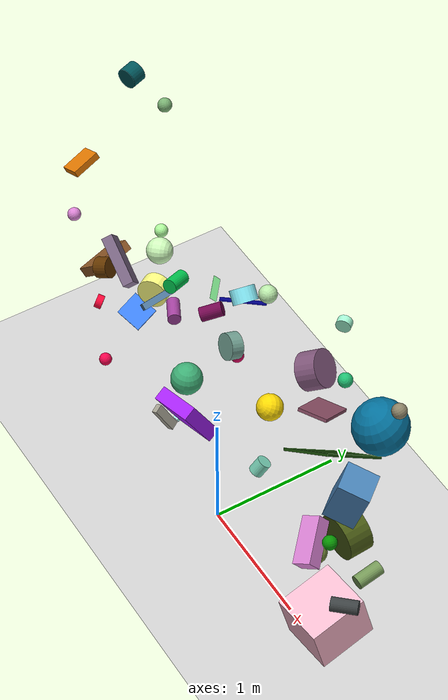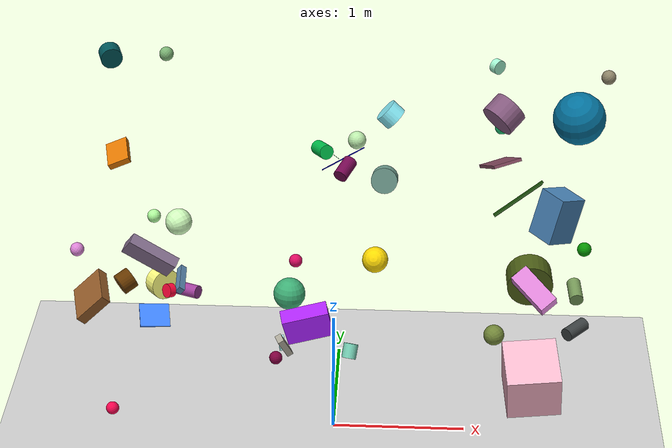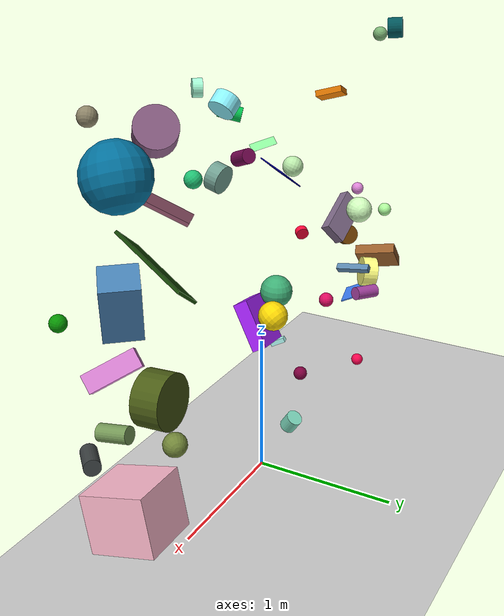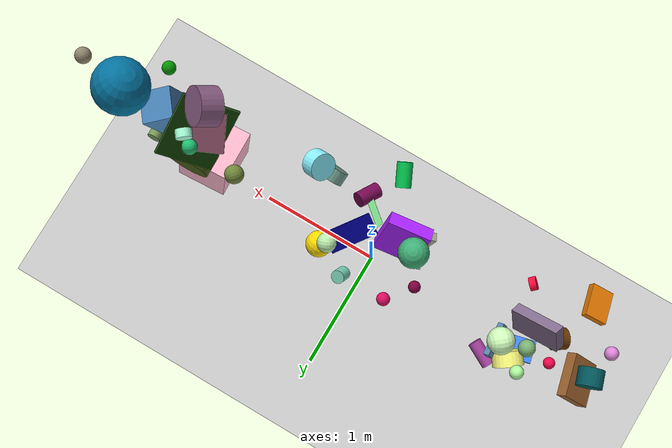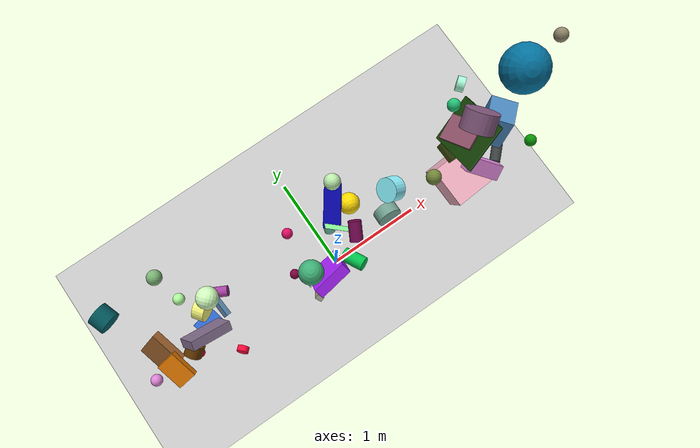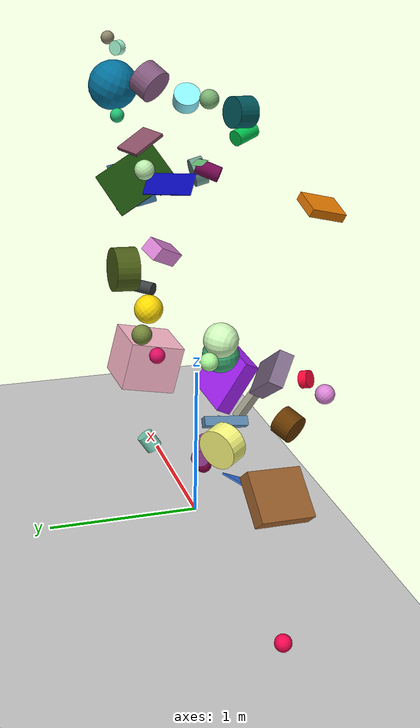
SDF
<sdf version="1.6">
 <world name="default">
  <light name="group/sun" type="directional">
   <direction>-0.5 0.1 -0.9</direction>
   <attenuation>
    <range>1000.0</range>
    <quadratic>0.001</quadratic>
    <constant>0.9</constant>
    <linear>0.01</linear>
   </attenuation>
   <pose>0 0 10 0 0 0</pose>
   <specular>0.2 0.2 0.2 1</specular>
   <diffuse>0.8 0.8 0.8 1</diffuse>
  </light>
  <model name="full_crate_2/cylinder_3">
   <allow_auto_disable>0</allow_auto_disable>
   <link name="link">
    <collision name="collision">
     <geometry><cylinder><length>0.196649048091</length><radius>0.05</radius></cylinder></geometry>
     <max_contacts>20</max_contacts>
    </collision>
    <visual name="visual">
     <geometry><cylinder><length>0.196649048091</length><radius>0.05</radius></cylinder></geometry>
     <material>
      <diffuse>0.643137 0.258824 0.627451 1</diffuse>
      <ambient>0.643137 0.258824 0.627451 1</ambient>
     </material>
     <transparency>0.0</transparency>
    </visual>
    <inertial>
     <mass>0.169870316542</mass>
     <inertia>
      <ixz>0.0</ixz>
      <ixx>0.000653588048697</ixx>
      <ixy>0.0</ixy>
      <izz>0.000212337895678</izz>
      <iyy>0.000653588048697</iyy>
      <iyz>0.0</iyz>
     </inertia>
    </inertial>
   </link>
   <pose>-1.12274 0.303846 1.01482 0.652644 -1.45258 2.00378</pose>
   <static>0</static>
  </model>
  <model name="full_crate_2/cylinder_2">
   <allow_auto_disable>0</allow_auto_disable>
   <link name="link">
    <collision name="collision">
     <geometry><cylinder><length>0.108043972093</length><radius>0.0795208652005</radius></cylinder></geometry>
     <max_contacts>20</max_contacts>
    </collision>
    <visual name="visual">
     <geometry><cylinder><length>0.108043972093</length><radius>0.0795208652005</radius></cylinder></geometry>
     <material><diffuse>0.396078 0.215686 0 1</diffuse><ambient>0.396078 0.215686 0 1</ambient></material>
     <transparency>0.0</transparency>
    </visual>
    <inertial>
     <mass>0.137246569396</mass>
     <inertia>
      <ixz>0.0</ixz>
      <ixx>0.000350484321569</ixx>
      <ixy>0.0</ixy>
      <izz>0.000433944007323</izz>
      <iyy>0.000350484321569</iyy>
      <iyz>0.0</iyz>
     </inertia>
    </inertial>
   </link>
   <pose>-1.52385 -0.0403608 1.30777 -2.14917 -0.849909 2.62309</pose>
   <static>0</static>
  </model>
  <model name="full_crate_2/ball_4">
   <allow_auto_disable>0</allow_auto_disable>
   <link name="link">
    <collision name="collision">
     <geometry><sphere><radius>0.05</radius></sphere></geometry>
     <max_contacts>20</max_contacts>
    </collision>
    <visual name="visual">
     <geometry><sphere><radius>0.05</radius></sphere></geometry>
     <material>
      <diffuse>0.960784 0.0196078 0.309804 1</diffuse>
      <ambient>0.960784 0.0196078 0.309804 1</ambient>
     </material>
     <transparency>0.0</transparency>
    </visual>
    <inertial>
     <mass>0.413316675792</mass>
     <inertia>
      <ixz>0.0</ixz>
      <ixx>0.000413316675792</ixx>
      <ixy>0.0</ixy>
      <izz>0.000413316675792</izz>
      <iyy>0.000413316675792</iyy>
      <iyz>0.0</iyz>
     </inertia>
    </inertial>
   </link>
   <pose>-1.7093 0.0148838 0.0890633 1.22544 0.307683 1.77623</pose>
   <static>0</static>
  </model>
  <model name="full_crate_2/cylinder">
   <allow_auto_disable>0</allow_auto_disable>
   <link name="link">
    <collision name="collision">
     <geometry><cylinder><length>0.05</length><radius>0.05</radius></cylinder></geometry>
     <max_contacts>20</max_contacts>
    </collision>
    <visual name="visual">
     <geometry><cylinder><length>0.05</length><radius>0.05</radius></cylinder></geometry>
     <material><diffuse>1 0.027451 0.227451 1</diffuse><ambient>1 0.027451 0.227451 1</ambient></material>
     <transparency>0.0</transparency>
    </visual>
    <inertial>
     <mass>0.029449580598</mass>
     <inertia>
      <ixz>0.0</ixz>
      <ixx>2.4541317165e-05</ixx>
      <ixy>0.0</ixy>
      <izz>3.68119757475e-05</izz>
      <iyy>2.4541317165e-05</iyy>
      <iyz>0.0</iyz>
     </inertia>
    </inertial>
   </link>
   <pose>-1.1692 -0.28011 1.3969 1.88267 0.400469 2.43899</pose>
   <static>0</static>
  </model>
  <model name="full_crate_2/cuboid_3">
   <allow_auto_disable>0</allow_auto_disable>
   <link name="link">
    <collision name="collision">
     <geometry><box><size>0.225148 0.19672 0.00948126</size></box></geometry>
     <max_contacts>20</max_contacts>
    </collision>
    <visual name="visual">
     <geometry><box><size>0.225148 0.19672 0.00948126</size></box></geometry>
     <material>
      <diffuse>0.243137 0.509804 0.988235 1</diffuse>
      <ambient>0.243137 0.509804 0.988235 1</ambient>
     </material>
     <transparency>0.0</transparency>
    </visual>
    <inertial>
     <mass>0.951683361882</mass>
     <inertia>
      <ixz>0.0</ixz>
      <ixx>0.00307620488224</ixx>
      <ixy>0.0</ixy>
      <izz>0.00708928630384</izz>
      <iyy>0.00402733989292</iyy>
      <iyz>0.0</iyz>
     </inertia>
    </inertial>
   </link>
   <pose>-1.35442 0.119494 0.897804 -2.69711 0.113877 0.227165</pose>
   <static>0</static>
  </model>
  <model name="full_crate_2/ball_1">
   <allow_auto_disable>0</allow_auto_disable>
   <link name="link">
    <collision name="collision">
     <geometry><sphere><radius>0.0977372200382</radius></sphere></geometry>
     <max_contacts>20</max_contacts>
    </collision>
    <visual name="visual">
     <geometry><sphere><radius>0.0977372200382</radius></sphere></geometry>
     <material><diffuse>0.819608 1 0.741176 1</diffuse><ambient>0.819608 1 0.741176 1</ambient></material>
     <transparency>0.0</transparency>
    </visual>
    <inertial>
     <mass>0.488396762799</mass>
     <inertia>
      <ixz>0.0</ixz>
      <ixx>0.00186617656893</ixx>
      <ixy>0.0</ixy>
      <izz>0.00186617656893</izz>
      <iyy>0.00186617656893</iyy>
      <iyz>0.0</iyz>
     </inertia>
    </inertial>
   </link>
   <pose>-1.14918 0.216422 1.67197 -1.70185 -0.679967 2.3846</pose>
   <static>0</static>
  </model>
  <model name="full_crate_2/ball">
   <allow_auto_disable>0</allow_auto_disable>
   <link name="link">
    <collision name="collision">
     <geometry><sphere><radius>0.05</radius></sphere></geometry>
     <max_contacts>20</max_contacts>
    </collision>
    <visual name="visual">
     <geometry><sphere><radius>0.05</radius></sphere></geometry>
     <material><diffuse>0.690196 1 0.615686 1</diffuse><ambient>0.690196 1 0.615686 1</ambient></material>
     <transparency>0.0</transparency>
    </visual>
    <inertial>
     <mass>0.317967161004</mass>
     <inertia>
      <ixz>0.0</ixz>
      <ixx>0.000317967161004</ixx>
      <ixy>0.0</ixy>
      <izz>0.000317967161004</izz>
      <iyy>0.000317967161004</iyy>
      <iyz>0.0</iyz>
     </inertia>
    </inertial>
   </link>
   <pose>-1.34962 0.345733 1.63672 1.12604 -1.11143 -0.487019</pose>
   <static>0</static>
  </model>
  <model name="full_crate_2/cylinder_4">
   <allow_auto_disable>0</allow_auto_disable>
   <link name="link">
    <collision name="collision">
     <geometry><cylinder><length>0.106356184727</length><radius>0.0758499985507</radius></cylinder></geometry>
     <max_contacts>20</max_contacts>
    </collision>
    <visual name="visual">
     <geometry><cylinder><length>0.106356184727</length><radius>0.0758499985507</radius></cylinder></geometry>
     <material><diffuse>0 0.333333 0.352941 1</diffuse><ambient>0 0.333333 0.352941 1</ambient></material>
     <transparency>0.0</transparency>
    </visual>
    <inertial>
     <mass>0.683600382849</mass>
     <inertia>
      <ixz>0.0</ixz>
      <ixx>0.00162761291231</ixx>
      <ixy>0.0</ixy>
      <izz>0.00196645247666</izz>
      <iyy>0.00162761291231</iyy>
      <iyz>0.0</iyz>
     </inertia>
    </inertial>
   </link>
   <pose>-1.57452 0.27641 2.9879 1.33308 -1.28312 -2.59904</pose>
   <static>0</static>
  </model>
  <model name="full_crate_2/cylinder_1">
   <allow_auto_disable>0</allow_auto_disable>
   <link name="link">
    <collision name="collision">
     <geometry><cylinder><length>0.111021966419</length><radius>0.11512258124</radius></cylinder></geometry>
     <max_contacts>20</max_contacts>
    </collision>
    <visual name="visual">
     <geometry><cylinder><length>0.111021966419</length><radius>0.11512258124</radius></cylinder></geometry>
     <material><diffuse>1 1 0.505882 1</diffuse><ambient>1 1 0.505882 1</ambient></material>
     <transparency>0.0</transparency>
    </visual>
    <inertial>
     <mass>0.162002770428</mass>
     <inertia>
      <ixz>0.0</ixz>
      <ixx>0.000703166317609</ixx>
      <ixy>0.0</ixy>
      <izz>0.00107352826415</izz>
      <iyy>0.000703166317609</iyy>
      <iyz>0.0</iyz>
     </inertia>
    </inertial>
   </link>
   <pose>-1.2981 0.24689 1.11484 -1.72841 0.634266 0.533946</pose>
   <static>0</static>
  </model>
  <model name="full_crate_2/cuboid_4">
   <allow_auto_disable>0</allow_auto_disable>
   <link name="link">
    <collision name="collision">
     <geometry><box><size>0.153202 0.209479 0.0469658</size></box></geometry>
     <max_contacts>20</max_contacts>
    </collision>
    <visual name="visual">
     <geometry><box><size>0.153202 0.209479 0.0469658</size></box></geometry>
     <material>
      <diffuse>0.882353 0.466667 0.00392157 1</diffuse>
      <ambient>0.882353 0.466667 0.00392157 1</ambient>
     </material>
     <transparency>0.0</transparency>
    </visual>
    <inertial>
     <mass>0.425962955755</mass>
     <inertia>
      <ixz>0.0</ixz>
      <ixx>0.00163595632336</ixx>
      <ixy>0.0</ixy>
      <izz>0.00239080460006</izz>
      <iyy>0.000911445331256</iyy>
      <iyz>0.0</iyz>
     </inertia>
    </inertial>
   </link>
   <pose>-1.48225 -0.195278 2.47039 2.85934 0.383003 -3.04369</pose>
   <static>0</static>
  </model>
  <model name="full_crate_2/cuboid_1">
   <allow_auto_disable>0</allow_auto_disable>
   <link name="link">
    <collision name="collision">
     <geometry><box><size>0.25874 0.0501014 0.0540694</size></box></geometry>
     <max_contacts>20</max_contacts>
    </collision>
    <visual name="visual">
     <geometry><box><size>0.25874 0.0501014 0.0540694</size></box></geometry>
     <material>
      <diffuse>0.352941 0.52549 0.678431 1</diffuse>
      <ambient>0.352941 0.52549 0.678431 1</ambient>
     </material>
     <transparency>0.0</transparency>
    </visual>
    <inertial>
     <mass>0.81975783264</mass>
     <inertia>
      <ixz>0.0</ixz>
      <ixx>0.000371189760247</ixx>
      <ixy>0.0</ixy>
      <izz>0.00474478955151</izz>
      <iyy>0.00477302702172</iyy>
      <iyz>0.0</iyz>
     </inertia>
    </inertial>
   </link>
   <pose>-1.15048 0.185252 1.18441 2.46609 0.124868 -1.51778</pose>
   <static>0</static>
  </model>
  <model name="full_crate_2/cuboid">
   <allow_auto_disable>0</allow_auto_disable>
   <link name="link">
    <collision name="collision">
     <geometry><box><size>0.185818 0.379889 0.08305</size></box></geometry>
     <max_contacts>20</max_contacts>
    </collision>
    <visual name="visual">
     <geometry><box><size>0.185818 0.379889 0.08305</size></box></geometry>
     <material>
      <diffuse>0.509804 0.427451 0.54902 1</diffuse>
      <ambient>0.509804 0.427451 0.54902 1</ambient>
     </material>
     <transparency>0.0</transparency>
    </visual>
    <inertial>
     <mass>0.8213693251</mass>
     <inertia>
      <ixz>0.0</ixz>
      <ixx>0.0103501445636</ixx>
      <ixy>0.0</ixy>
      <izz>0.0122414089975</izz>
      <iyy>0.00283546977041</iyy>
      <iyz>0.0</iyz>
     </inertia>
    </inertial>
   </link>
   <pose>-1.33534 -0.0092274 1.51944 -2.22682 0.848824 2.30576</pose>
   <static>0</static>
  </model>
  <model name="full_crate_2/cuboid_2">
   <allow_auto_disable>0</allow_auto_disable>
   <link name="link">
    <collision name="collision">
     <geometry><box><size>0.0807524 0.326365 0.275759</size></box></geometry>
     <max_contacts>20</max_contacts>
    </collision>
    <visual name="visual">
     <geometry><box><size>0.0807524 0.326365 0.275759</size></box></geometry>
     <material>
      <diffuse>0.596078 0.368627 0.168627 1</diffuse>
      <ambient>0.596078 0.368627 0.168627 1</ambient>
     </material>
     <transparency>0.0</transparency>
    </visual>
    <inertial>
     <mass>0.765968148879</mass>
     <inertia>
      <ixz>0.0</ixz>
      <ixx>0.0116527437738</ixx>
      <ixy>0.0</ixy>
      <izz>0.00721508490573</izz>
      <iyy>0.00527013135253</iyy>
      <iyz>0.0</iyz>
     </inertia>
    </inertial>
   </link>
   <pose>-1.81995 0.120058 1.05469 2.94215 -0.785565 -2.76955</pose>
   <static>0</static>
  </model>
  <model name="full_crate_2/ball_2">
   <allow_auto_disable>0</allow_auto_disable>
   <link name="link">
    <collision name="collision">
     <geometry><sphere><radius>0.05</radius></sphere></geometry>
     <max_contacts>20</max_contacts>
    </collision>
    <visual name="visual">
     <geometry><sphere><radius>0.05</radius></sphere></geometry>
     <material>
      <diffuse>0.866667 0.521569 0.843137 1</diffuse>
      <ambient>0.866667 0.521569 0.843137 1</ambient>
     </material>
     <transparency>0.0</transparency>
    </visual>
    <inertial>
     <mass>0.176420838134</mass>
     <inertia>
      <ixz>0.0</ixz>
      <ixx>0.000176420838134</ixx>
      <ixy>0.0</ixy>
      <izz>0.000176420838134</izz>
      <iyy>0.000176420838134</iyy>
      <iyz>0.0</iyz>
     </inertia>
    </inertial>
   </link>
   <pose>-1.85013 -0.0992003 1.61135 0.449995 -0.738198 -2.97482</pose>
   <static>0</static>
  </model>
  <model name="full_crate_2/ball_3">
   <allow_auto_disable>0</allow_auto_disable>
   <link name="link">
    <collision name="collision">
     <geometry><sphere><radius>0.05</radius></sphere></geometry>
     <max_contacts>20</max_contacts>
    </collision>
    <visual name="visual">
     <geometry><sphere><radius>0.05</radius></sphere></geometry>
     <material>
      <diffuse>0.482353 0.698039 0.454902 1</diffuse>
      <ambient>0.482353 0.698039 0.454902 1</ambient>
     </material>
     <transparency>0.0</transparency>
    </visual>
    <inertial>
     <mass>0.201928672202</mass>
     <inertia>
      <ixz>0.0</ixz>
      <ixx>0.000201928672202</ixx>
      <ixy>0.0</ixy>
      <izz>0.000201928672202</izz>
      <iyy>0.000201928672202</iyy>
      <iyz>0.0</iyz>
     </inertia>
    </inertial>
   </link>
   <pose>-1.18708 0.312062 2.99023 -2.24819 -0.311098 2.4477</pose>
   <static>0</static>
  </model>
  <model name="full_crate_1/ball_3">
   <allow_auto_disable>0</allow_auto_disable>
   <link name="link">
    <collision name="collision">
     <geometry><sphere><radius>0.05</radius></sphere></geometry>
     <max_contacts>20</max_contacts>
    </collision>
    <visual name="visual">
     <geometry><sphere><radius>0.05</radius></sphere></geometry>
     <material>
      <diffuse>0.870588 0.0470588 0.384314 1</diffuse>
      <ambient>0.870588 0.0470588 0.384314 1</ambient>
     </material>
     <transparency>0.0</transparency>
    </visual>
    <inertial>
     <mass>0.1</mass>
     <inertia>
      <ixz>0.0</ixz>
      <ixx>0.0001</ixx>
      <ixy>0.0</ixy>
      <izz>0.0001</izz>
      <iyy>0.0001</iyy>
      <iyz>0.0</iyz>
     </inertia>
    </inertial>
   </link>
   <pose>-0.301774 0.348385 1.27328 -2.61679 -1.2975 1.93625</pose>
   <static>0</static>
  </model>
  <model name="full_crate_1/ball_2">
   <allow_auto_disable>0</allow_auto_disable>
   <link name="link">
    <collision name="collision">
     <geometry><sphere><radius>0.0969636948203</radius></sphere></geometry>
     <max_contacts>20</max_contacts>
    </collision>
    <visual name="visual">
     <geometry><sphere><radius>0.0969636948203</radius></sphere></geometry>
     <material><diffuse>1 0.854902 0.0117647 1</diffuse><ambient>1 0.854902 0.0117647 1</ambient></material>
     <transparency>0.0</transparency>
    </visual>
    <inertial>
     <mass>0.95639210794</mass>
     <inertia>
      <ixz>0.0</ixz>
      <ixx>0.00359678341546</ixx>
      <ixy>0.0</ixy>
      <izz>0.00359678341546</izz>
      <iyy>0.00359678341546</iyy>
      <iyz>0.0</iyz>
     </inertia>
    </inertial>
   </link>
   <pose>0.294955 0.247479 1.36645 2.24264 -0.0686642 2.93167</pose>
   <static>0</static>
  </model>
  <model name="full_crate_1/ball_1">
   <allow_auto_disable>0</allow_auto_disable>
   <link name="link">
    <collision name="collision">
     <geometry><sphere><radius>0.05</radius></sphere></geometry>
     <max_contacts>20</max_contacts>
    </collision>
    <visual name="visual">
     <geometry><sphere><radius>0.05</radius></sphere></geometry>
     <material>
      <diffuse>0.501961 0.00392157 0.247059 1</diffuse>
      <ambient>0.501961 0.00392157 0.247059 1</ambient>
     </material>
     <transparency>0.0</transparency>
    </visual>
    <inertial>
     <mass>0.155652817507</mass>
     <inertia>
      <ixz>0.0</ixz>
      <ixx>0.000155652817507</ixx>
      <ixy>0.0</ixy>
      <izz>0.000155652817507</izz>
      <iyy>0.000155652817507</iyy>
      <iyz>0.0</iyz>
     </inertia>
    </inertial>
   </link>
   <pose>-0.443305 0.0849494 0.561834 -0.344392 0.627236 1.4277</pose>
   <static>0</static>
  </model>
  <model name="full_crate_1/cylinder_1">
   <allow_auto_disable>0</allow_auto_disable>
   <link name="link">
    <collision name="collision">
     <geometry><cylinder><length>0.157229292468</length><radius>0.05</radius></cylinder></geometry>
     <max_contacts>20</max_contacts>
    </collision>
    <visual name="visual">
     <geometry><cylinder><length>0.157229292468</length><radius>0.05</radius></cylinder></geometry>
     <material>
      <diffuse>0.00784314 0.756863 0.301961 1</diffuse>
      <ambient>0.00784314 0.756863 0.301961 1</ambient>
     </material>
     <transparency>0.0</transparency>
    </visual>
    <inertial>
     <mass>0.555344194306</mass>
     <inertia>
      <ixz>0.0</ixz>
      <ixx>0.0014911477733</ixx>
      <ixy>0.0</ixy>
      <izz>0.000694180242882</izz>
      <iyy>0.0014911477733</iyy>
      <iyz>0.0</iyz>
     </inertia>
    </inertial>
   </link>
   <pose>-0.0659793 -0.26894 2.57932 1.81779 -0.122863 -2.71884</pose>
   <static>0</static>
  </model>
  <model name="full_crate_1/ball">
   <allow_auto_disable>0</allow_auto_disable>
   <link name="link">
    <collision name="collision">
     <geometry><sphere><radius>0.064393180499</radius></sphere></geometry>
     <max_contacts>20</max_contacts>
    </collision>
    <visual name="visual">
     <geometry><sphere><radius>0.064393180499</radius></sphere></geometry>
     <material>
      <diffuse>0.737255 0.92549 0.67451 1</diffuse>
      <ambient>0.737255 0.92549 0.67451 1</ambient>
     </material>
     <transparency>0.0</transparency>
    </visual>
    <inertial>
     <mass>0.852381836683</mass>
     <inertia>
      <ixz>0.0</ixz>
      <ixx>0.00141375427311</ixx>
      <ixy>0.0</ixy>
      <izz>0.00141375427311</izz>
      <iyy>0.00141375427311</iyy>
      <iyz>0.0</iyz>
     </inertia>
    </inertial>
   </link>
   <pose>0.151247 0.307328 2.34101 -1.14496 0.066342 -2.64353</pose>
   <static>0</static>
  </model>
  <model name="full_crate_1/cylinder_2">
   <allow_auto_disable>0</allow_auto_disable>
   <link name="link">
    <collision name="collision">
     <geometry><cylinder><length>0.113171933187</length><radius>0.056192017223</radius></cylinder></geometry>
     <max_contacts>20</max_contacts>
    </collision>
    <visual name="visual">
     <geometry><cylinder><length>0.113171933187</length><radius>0.056192017223</radius></cylinder></geometry>
     <material>
      <diffuse>0.470588 0.819608 0.713725 1</diffuse>
      <ambient>0.470588 0.819608 0.713725 1</ambient>
     </material>
     <transparency>0.0</transparency>
    </visual>
    <inertial>
     <mass>0.508788824979</mass>
     <inertia>
      <ixz>0.0</ixz>
      <ixx>0.000944673081299</ixx>
      <ixy>0.0</ixy>
      <izz>0.000803261245414</izz>
      <iyy>0.000944673081299</iyy>
      <iyz>0.0</iyz>
     </inertia>
    </inertial>
   </link>
   <pose>0.110742 0.293218 0.495196 0.572717 -0.247425 -3.05164</pose>
   <static>0</static>
  </model>
  <model name="full_crate_1/cylinder_4">
   <allow_auto_disable>0</allow_auto_disable>
   <link name="link">
    <collision name="collision">
     <geometry><cylinder><length>0.0997688268396</length><radius>0.0857429083225</radius></cylinder></geometry>
     <max_contacts>20</max_contacts>
    </collision>
    <visual name="visual">
     <geometry><cylinder><length>0.0997688268396</length><radius>0.0857429083225</radius></cylinder></geometry>
     <material>
      <diffuse>0.541176 0.945098 0.996078 1</diffuse>
      <ambient>0.541176 0.945098 0.996078 1</ambient>
     </material>
     <transparency>0.0</transparency>
    </visual>
    <inertial>
     <mass>0.862312480984</mass>
     <inertia>
      <ixz>0.0</ixz>
      <ixx>0.00230017239434</ixx>
      <ixy>0.0</ixy>
      <izz>0.00316979442328</izz>
      <iyy>0.00230017239434</iyy>
      <iyz>0.0</iyz>
     </inertia>
    </inertial>
   </link>
   <pose>0.39227 -0.0334159 2.73734 0.124016 -0.840868 -0.334148</pose>
   <static>0</static>
  </model>
  <model name="full_crate_1/ball_4">
   <allow_auto_disable>0</allow_auto_disable>
   <link name="link">
    <collision name="collision">
     <geometry><sphere><radius>0.116875627764</radius></sphere></geometry>
     <max_contacts>20</max_contacts>
    </collision>
    <visual name="visual">
     <geometry><sphere><radius>0.116875627764</radius></sphere></geometry>
     <material>
      <diffuse>0.243137 0.686275 0.462745 1</diffuse>
      <ambient>0.243137 0.686275 0.462745 1</ambient>
     </material>
     <transparency>0.0</transparency>
    </visual>
    <inertial>
     <mass>0.166490108131</mass>
     <inertia>
      <ixz>0.0</ixz>
      <ixx>0.000909696114705</ixx>
      <ixy>0.0</ixy>
      <izz>0.000909696114705</izz>
      <iyy>0.000909696114705</iyy>
      <iyz>0.0</iyz>
     </inertia>
    </inertial>
   </link>
   <pose>-0.321418 -0.0567465 1.24853 -3.05742 0.0503136 2.1269</pose>
   <static>0</static>
  </model>
  <model name="full_crate_1/cylinder">
   <allow_auto_disable>0</allow_auto_disable>
   <link name="link">
    <collision name="collision">
     <geometry><cylinder><length>0.15370582379</length><radius>0.05</radius></cylinder></geometry>
     <max_contacts>20</max_contacts>
    </collision>
    <visual name="visual">
     <geometry><cylinder><length>0.15370582379</length><radius>0.05</radius></cylinder></geometry>
     <material>
      <diffuse>0.458824 0.0313725 0.317647 1</diffuse>
      <ambient>0.458824 0.0313725 0.317647 1</ambient>
     </material>
     <transparency>0.0</transparency>
    </visual>
    <inertial>
     <mass>0.378151443738</mass>
     <inertia>
      <ixz>0.0</ixz>
      <ixx>0.000980845441662</ixx>
      <ixy>0.0</ixy>
      <izz>0.000472689304672</izz>
      <iyy>0.000980845441662</iyy>
      <iyz>0.0</iyz>
     </inertia>
    </inertial>
   </link>
   <pose>0.0840076 -0.0883185 2.33007 -0.774845 -1.0785 -1.21891</pose>
   <static>0</static>
  </model>
  <model name="full_crate_1/cuboid">
   <allow_auto_disable>0</allow_auto_disable>
   <link name="link">
    <collision name="collision">
     <geometry><box><size>0.0592614 0.000418816 0.175104</size></box></geometry>
     <max_contacts>20</max_contacts>
    </collision>
    <visual name="visual">
     <geometry><box><size>0.0592614 0.000418816 0.175104</size></box></geometry>
     <material><diffuse>0.560784 1 0.623529 1</diffuse><ambient>0.560784 1 0.623529 1</ambient></material>
     <transparency>0.0</transparency>
    </visual>
    <inertial>
     <mass>0.892414833055</mass>
     <inertia>
      <ixz>0.0</ixz>
      <ixx>0.00228023527285</ixx>
      <ixy>0.0</ixy>
      <izz>0.000261186675679</izz>
      <iyy>0.00254139585929</iyy>
      <iyz>0.0</iyz>
     </inertia>
    </inertial>
   </link>
   <pose>-0.021978 0.00129764 2.40572 -1.24542 0.7645 1.09169</pose>
   <static>0</static>
  </model>
  <model name="full_crate_1/cuboid_4">
   <allow_auto_disable>0</allow_auto_disable>
   <link name="link">
    <collision name="collision">
     <geometry><box><size>0.216927 0.0677966 0.047307</size></box></geometry>
     <max_contacts>20</max_contacts>
    </collision>
    <visual name="visual">
     <geometry><box><size>0.216927 0.0677966 0.047307</size></box></geometry>
     <material>
      <diffuse>0.658824 0.643137 0.584314 1</diffuse>
      <ambient>0.658824 0.643137 0.584314 1</ambient>
     </material>
     <transparency>0.0</transparency>
    </visual>
    <inertial>
     <mass>0.813712580138</mass>
     <inertia>
      <ixz>0.0</ixz>
      <ixx>0.000463431824681</ixx>
      <ixy>0.0</ixy>
      <izz>0.00350259132752</izz>
      <iyy>0.00334266816317</iyy>
      <iyz>0.0</iyz>
     </inertia>
    </inertial>
   </link>
   <pose>-0.353654 -0.225641 0.902886 -2.54743 1.02194 0.999975</pose>
   <static>0</static>
  </model>
  <model name="full_crate_1/cylinder_3">
   <allow_auto_disable>0</allow_auto_disable>
   <link name="link">
    <collision name="collision">
     <geometry><cylinder><length>0.0861189502774</length><radius>0.0925571677113</radius></cylinder></geometry>
     <max_contacts>20</max_contacts>
    </collision>
    <visual name="visual">
     <geometry><cylinder><length>0.0861189502774</length><radius>0.0925571677113</radius></cylinder></geometry>
     <material>
      <diffuse>0.443137 0.623529 0.568627 1</diffuse>
      <ambient>0.443137 0.623529 0.568627 1</ambient>
     </material>
     <transparency>0.0</transparency>
    </visual>
    <inertial>
     <mass>0.700421718462</mass>
     <inertia>
      <ixz>0.0</ixz>
      <ixx>0.00193298658923</ixx>
      <ixy>0.0</ixy>
      <izz>0.00300019664819</izz>
      <iyy>0.00193298658923</iyy>
      <iyz>0.0</iyz>
     </inertia>
    </inertial>
   </link>
   <pose>0.359891 -0.107213 2.26318 2.82805 -1.28767 1.82998</pose>
   <static>0</static>
  </model>
  <model name="full_crate_1/cuboid_1">
   <allow_auto_disable>0</allow_auto_disable>
   <link name="link">
    <collision name="collision">
     <geometry><box><size>0.316986 0.166957 0.00690518</size></box></geometry>
     <max_contacts>20</max_contacts>
    </collision>
    <visual name="visual">
     <geometry><box><size>0.316986 0.166957 0.00690518</size></box></geometry>
     <material>
      <diffuse>0.0196078 0.0156863 0.666667 1</diffuse>
      <ambient>0.0196078 0.0156863 0.666667 1</ambient>
     </material>
     <transparency>0.0</transparency>
    </visual>
    <inertial>
     <mass>0.708959335131</mass>
     <inertia>
      <ixz>0.0</ixz>
      <ixx>0.00164964623501</ixx>
      <ixy>0.0</ixy>
      <izz>0.00758319208276</izz>
      <iyy>0.00593917988597</iyy>
      <iyz>0.0</iyz>
     </inertia>
    </inertial>
   </link>
   <pose>0.0588573 0.171173 2.26219 -0.690341 0.062843 0.944464</pose>
   <static>0</static>
  </model>
  <model name="full_crate_1/cuboid_2">
   <allow_auto_disable>0</allow_auto_disable>
   <link name="link">
    <collision name="collision">
     <geometry><box><size>0.358045 0.106399 0.343253</size></box></geometry>
     <max_contacts>20</max_contacts>
    </collision>
    <visual name="visual">
     <geometry><box><size>0.358045 0.106399 0.343253</size></box></geometry>
     <material><diffuse>0.666667 0.137255 1 1</diffuse><ambient>0.666667 0.137255 1 1</ambient></material>
     <transparency>0.0</transparency>
    </visual>
    <inertial>
     <mass>0.214432686077</mass>
     <inertia>
      <ixz>0.0</ixz>
      <ixx>0.00230771739893</ixx>
      <ixy>0.0</ixy>
      <izz>0.00249308460433</izz>
      <iyy>0.00439620954212</iyy>
      <iyz>0.0</iyz>
     </inertia>
    </inertial>
   </link>
   <pose>-0.189623 -0.136679 1.04405 -1.17975 -1.04231 -1.76151</pose>
   <static>0</static>
  </model>
  <model name="full_crate_1/cuboid_3">
   <allow_auto_disable>0</allow_auto_disable>
   <link name="link">
    <collision name="collision">
     <geometry><box><size>0.112731 0.0398933 0.0350476</size></box></geometry>
     <max_contacts>20</max_contacts>
    </collision>
    <visual name="visual">
     <geometry><box><size>0.112731 0.0398933 0.0350476</size></box></geometry>
     <material><diffuse>0.717647 1 0.980392 1</diffuse><ambient>0.717647 1 0.980392 1</ambient></material>
     <transparency>0.0</transparency>
    </visual>
    <inertial>
     <mass>0.561659345412</mass>
     <inertia>
      <ixz>0.0</ixz>
      <ixx>0.000131980908919</ixx>
      <ixy>0.0</ixy>
      <izz>0.0006692974255</izz>
      <iyy>0.000652300602196</iyy>
      <iyz>0.0</iyz>
     </inertia>
    </inertial>
   </link>
   <pose>-0.383469 -0.0738916 0.817752 0.040193 -0.476911 1.77554</pose>
   <static>0</static>
  </model>
  <model name="full_crate/ball_3">
   <allow_auto_disable>0</allow_auto_disable>
   <link name="link">
    <collision name="collision">
     <geometry><sphere><radius>0.05</radius></sphere></geometry>
     <max_contacts>20</max_contacts>
    </collision>
    <visual name="visual">
     <geometry><sphere><radius>0.05</radius></sphere></geometry>
     <material>
      <diffuse>0.12549 0.752941 0.45098 1</diffuse>
      <ambient>0.12549 0.752941 0.45098 1</ambient>
     </material>
     <transparency>0.0</transparency>
    </visual>
    <inertial>
     <mass>0.1</mass>
     <inertia>
      <ixz>0.0</ixz>
      <ixx>0.0001</ixx>
      <ixy>0.0</ixy>
      <izz>0.0001</izz>
      <iyy>0.0001</iyy>
      <iyz>0.0</iyz>
     </inertia>
    </inertial>
   </link>
   <pose>1.17434 0.241892 2.5079 -2.54538 0.23432 0.28502</pose>
   <static>0</static>
  </model>
  <model name="full_crate/ball_2">
   <allow_auto_disable>0</allow_auto_disable>
   <link name="link">
    <collision name="collision">
     <geometry><sphere><radius>0.05</radius></sphere></geometry>
     <max_contacts>20</max_contacts>
    </collision>
    <visual name="visual">
     <geometry><sphere><radius>0.05</radius></sphere></geometry>
     <material>
      <diffuse>0.0313725 0.580392 0.0156863 1</diffuse>
      <ambient>0.0313725 0.580392 0.0156863 1</ambient>
     </material>
     <transparency>0.0</transparency>
    </visual>
    <inertial>
     <mass>0.511477286002</mass>
     <inertia>
      <ixz>0.0</ixz>
      <ixx>0.000511477286002</ixx>
      <ixy>0.0</ixy>
      <izz>0.000511477286002</izz>
      <iyy>0.000511477286002</iyy>
      <iyz>0.0</iyz>
     </inertia>
    </inertial>
   </link>
   <pose>1.77025 -0.236433 1.81119 1.46499 -1.34117 -0.121964</pose>
   <static>0</static>
  </model>
  <model name="full_crate/cylinder">
   <allow_auto_disable>0</allow_auto_disable>
   <link name="link">
    <collision name="collision">
     <geometry><cylinder><length>0.189946948405</length><radius>0.05</radius></cylinder></geometry>
     <max_contacts>20</max_contacts>
    </collision>
    <visual name="visual">
     <geometry><cylinder><length>0.189946948405</length><radius>0.05</radius></cylinder></geometry>
     <material><diffuse>0.462745 0.6 0.345098 1</diffuse><ambient>0.462745 0.6 0.345098 1</ambient></material>
     <transparency>0.0</transparency>
    </visual>
    <inertial>
     <mass>0.329354634244</mass>
     <inertia>
      <ixz>0.0</ixz>
      <ixx>0.00119610194335</ixx>
      <ixy>0.0</ixy>
      <izz>0.000411693292805</izz>
      <iyy>0.00119610194335</iyy>
      <iyz>0.0</iyz>
     </inertia>
    </inertial>
   </link>
   <pose>1.76767 0.088064 1.23833 3.10819 1.42154 1.60494</pose>
   <static>0</static>
  </model>
  <model name="full_crate/ball_4">
   <allow_auto_disable>0</allow_auto_disable>
   <link name="link">
    <collision name="collision">
     <geometry><sphere><radius>0.05</radius></sphere></geometry>
     <max_contacts>20</max_contacts>
    </collision>
    <visual name="visual">
     <geometry><sphere><radius>0.05</radius></sphere></geometry>
     <material>
      <diffuse>0.552941 0.517647 0.407843 1</diffuse>
      <ambient>0.552941 0.517647 0.407843 1</ambient>
     </material>
     <transparency>0.0</transparency>
    </visual>
    <inertial>
     <mass>0.479751108938</mass>
     <inertia>
      <ixz>0.0</ixz>
      <ixx>0.000479751108938</ixx>
      <ixy>0.0</ixy>
      <izz>0.000479751108938</izz>
      <iyy>0.000479751108938</iyy>
      <iyz>0.0</iyz>
     </inertia>
    </inertial>
   </link>
   <pose>1.87756 0.145548 2.96785 -2.58612 0.392547 -1.74593</pose>
   <static>0</static>
  </model>
  <model name="full_crate/cuboid_2">
   <allow_auto_disable>0</allow_auto_disable>
   <link name="link">
    <collision name="collision">
     <geometry><box><size>0.0191426 0.481576 0.411572</size></box></geometry>
     <max_contacts>20</max_contacts>
    </collision>
    <visual name="visual">
     <geometry><box><size>0.0191426 0.481576 0.411572</size></box></geometry>
     <material>
      <diffuse>0.0823529 0.266667 0.0235294 1</diffuse>
      <ambient>0.0823529 0.266667 0.0235294 1</ambient>
     </material>
     <transparency>0.0</transparency>
    </visual>
    <inertial>
     <mass>0.492379396698</mass>
     <inertia>
      <ixz>0.0</ixz>
      <ixx>0.0164662597436</ixx>
      <ixy>0.0</ixy>
      <izz>0.00953090389963</izz>
      <iyy>0.00696542701634</iyy>
      <iyz>0.0</iyz>
     </inertia>
    </inertial>
   </link>
   <pose>1.3075 0.0774975 2.02077 -0.801673 0.730042 -0.66679</pose>
   <static>0</static>
  </model>
  <model name="full_crate/cuboid_3">
   <allow_auto_disable>0</allow_auto_disable>
   <link name="link">
    <collision name="collision">
     <geometry><box><size>0.115881 0.331055 0.140019</size></box></geometry>
     <max_contacts>20</max_contacts>
    </collision>
    <visual name="visual">
     <geometry><box><size>0.115881 0.331055 0.140019</size></box></geometry>
     <material>
      <diffuse>0.866667 0.521569 0.843137 1</diffuse>
      <ambient>0.866667 0.521569 0.843137 1</ambient>
     </material>
     <transparency>0.0</transparency>
    </visual>
    <inertial>
     <mass>0.199662927468</mass>
     <inertia>
      <ixz>0.0</ixz>
      <ixx>0.00214975184603</ixx>
      <ixy>0.0</ixy>
      <izz>0.00204697669552</izz>
      <iyy>0.000549633045763</iyy>
      <iyz>0.0</iyz>
     </inertia>
    </inertial>
   </link>
   <pose>1.44755 -0.158332 1.40069 2.44275 -0.899282 -1.77018</pose>
   <static>0</static>
  </model>
  <model name="full_crate/ball">
   <allow_auto_disable>0</allow_auto_disable>
   <link name="link">
    <collision name="collision">
     <geometry><sphere><radius>0.184952278765</radius></sphere></geometry>
     <max_contacts>20</max_contacts>
    </collision>
    <visual name="visual">
     <geometry><sphere><radius>0.184952278765</radius></sphere></geometry>
     <material>
      <diffuse>0.0117647 0.443137 0.611765 1</diffuse>
      <ambient>0.0117647 0.443137 0.611765 1</ambient>
     </material>
     <transparency>0.0</transparency>
    </visual>
    <inertial>
     <mass>0.116157582032</mass>
     <inertia>
      <ixz>0.0</ixz>
      <ixx>0.00158937701272</ixx>
      <ixy>0.0</ixy>
      <izz>0.00158937701272</izz>
      <iyy>0.00158937701272</iyy>
      <iyz>0.0</iyz>
     </inertia>
    </inertial>
   </link>
   <pose>1.70113 0.149322 2.64162 -0.0840897 -0.436442 1.19802</pose>
   <static>0</static>
  </model>
  <model name="full_crate/cuboid_1">
   <allow_auto_disable>0</allow_auto_disable>
   <link name="link">
    <collision name="collision">
     <geometry><box><size>0.375654 0.403305 0.430895</size></box></geometry>
     <max_contacts>20</max_contacts>
    </collision>
    <visual name="visual">
     <geometry><box><size>0.375654 0.403305 0.430895</size></box></geometry>
     <material><diffuse>1 0.729412 0.803922 1</diffuse><ambient>1 0.729412 0.803922 1</ambient></material>
     <transparency>0.0</transparency>
    </visual>
    <inertial>
     <mass>0.144651803274</mass>
     <inertia>
      <ixz>0.0</ixz>
      <ixx>0.0041988275766</ixx>
      <ixy>0.0</ixy>
      <izz>0.00366174648737</izz>
      <iyy>0.00393919009281</iyy>
      <iyz>0.0</iyz>
     </inertia>
    </inertial>
   </link>
   <pose>1.48499 -0.0317313 0.52811 2.84458 1.33701 1.34525</pose>
   <static>0</static>
  </model>
  <model name="full_crate/cuboid_4">
   <allow_auto_disable>0</allow_auto_disable>
   <link name="link">
    <collision name="collision">
     <geometry><box><size>0.262838 0.0224931 0.212083</size></box></geometry>
     <max_contacts>20</max_contacts>
    </collision>
    <visual name="visual">
     <geometry><box><size>0.262838 0.0224931 0.212083</size></box></geometry>
     <material>
      <diffuse>0.529412 0.298039 0.384314 1</diffuse>
      <ambient>0.529412 0.298039 0.384314 1</ambient>
     </material>
     <transparency>0.0</transparency>
    </visual>
    <inertial>
     <mass>0.347021546854</mass>
     <inertia>
      <ixz>0.0</ixz>
      <ixx>0.00131535639423</ixx>
      <ixy>0.0</ixy>
      <izz>0.00201242533953</izz>
      <iyy>0.00329851987047</iyy>
      <iyz>0.0</iyz>
     </inertia>
    </inertial>
   </link>
   <pose>1.16827 0.0780513 2.31315 -1.47326 -0.462388 -1.16801</pose>
   <static>0</static>
  </model>
  <model name="full_crate/ball_1">
   <allow_auto_disable>0</allow_auto_disable>
   <link name="link">
    <collision name="collision">
     <geometry><sphere><radius>0.0771688036453</radius></sphere></geometry>
     <max_contacts>20</max_contacts>
    </collision>
    <visual name="visual">
     <geometry><sphere><radius>0.0771688036453</radius></sphere></geometry>
     <material>
      <diffuse>0.447059 0.52549 0.223529 1</diffuse>
      <ambient>0.447059 0.52549 0.223529 1</ambient>
     </material>
     <transparency>0.0</transparency>
    </visual>
    <inertial>
     <mass>0.737489071401</mass>
     <inertia>
      <ixz>0.0</ixz>
      <ixx>0.0017567061235</ixx>
      <ixy>0.0</ixy>
      <izz>0.0017567061235</izz>
      <iyy>0.0017567061235</iyy>
      <iyz>0.0</iyz>
     </inertia>
    </inertial>
   </link>
   <pose>1.19232 0.0675489 0.842753 -1.62531 -1.19558 2.48836</pose>
   <static>0</static>
  </model>
  <model name="full_crate/cylinder_1">
   <allow_auto_disable>0</allow_auto_disable>
   <link name="link">
    <collision name="collision">
     <geometry><cylinder><length>0.189417959478</length><radius>0.05</radius></cylinder></geometry>
     <max_contacts>20</max_contacts>
    </collision>
    <visual name="visual">
     <geometry><cylinder><length>0.189417959478</length><radius>0.05</radius></cylinder></geometry>
     <material>
      <diffuse>0.235294 0.254902 0.258824 1</diffuse>
      <ambient>0.235294 0.254902 0.258824 1</ambient>
     </material>
     <transparency>0.0</transparency>
    </visual>
    <inertial>
     <mass>0.025005944285</mass>
     <inertia>
      <ixz>0.0</ixz>
      <ixx>9.03947452025e-05</ixx>
      <ixy>0.0</ixy>
      <izz>3.12574303562e-05</izz>
      <iyy>9.03947452025e-05</iyy>
      <iyz>0.0</iyz>
     </inertia>
    </inertial>
   </link>
   <pose>1.77251 -0.0896062 1.02421 -1.43149 1.14564 -0.653797</pose>
   <static>0</static>
  </model>
  <model name="full_crate/cylinder_2">
   <allow_auto_disable>0</allow_auto_disable>
   <link name="link">
    <collision name="collision">
     <geometry><cylinder><length>0.179044069684</length><radius>0.167202381433</radius></cylinder></geometry>
     <max_contacts>20</max_contacts>
    </collision>
    <visual name="visual">
     <geometry><cylinder><length>0.179044069684</length><radius>0.167202381433</radius></cylinder></geometry>
     <material>
      <diffuse>0.294118 0.364706 0.0862745 1</diffuse>
      <ambient>0.294118 0.364706 0.0862745 1</ambient>
     </material>
     <transparency>0.0</transparency>
    </visual>
    <inertial>
     <mass>0.330046094459</mass>
     <inertia>
      <ixz>0.0</ixz>
      <ixx>0.00318842921705</ixx>
      <ixy>0.0</ixy>
      <izz>0.00461348932189</izz>
      <iyy>0.00318842921705</iyy>
      <iyz>0.0</iyz>
     </inertia>
    </inertial>
   </link>
   <pose>1.4326 0.146123 1.29255 1.43613 1.22868 3.04846</pose>
   <static>0</static>
  </model>
  <model name="full_crate/cylinder_3">
   <allow_auto_disable>0</allow_auto_disable>
   <link name="link">
    <collision name="collision">
     <geometry><cylinder><length>0.0530367532496</length><radius>0.05</radius></cylinder></geometry>
     <max_contacts>20</max_contacts>
    </collision>
    <visual name="visual">
     <geometry><cylinder><length>0.0530367532496</length><radius>0.05</radius></cylinder></geometry>
     <material>
      <diffuse>0.647059 0.984314 0.835294 1</diffuse>
      <ambient>0.647059 0.984314 0.835294 1</ambient>
     </material>
     <transparency>0.0</transparency>
    </visual>
    <inertial>
     <mass>0.747805406306</mass>
     <inertia>
      <ixz>0.0</ixz>
      <ixx>0.000642670023107</ixx>
      <ixy>0.0</ixy>
      <izz>0.000934756757882</izz>
      <iyy>0.000642670023107</iyy>
      <iyz>0.0</iyz>
     </inertia>
    </inertial>
   </link>
   <pose>1.12017 0.247124 2.98179 2.65492 1.55046 -1.3784</pose>
   <static>0</static>
  </model>
  <model name="full_crate/cylinder_4">
   <allow_auto_disable>0</allow_auto_disable>
   <link name="link">
    <collision name="collision">
     <geometry><cylinder><length>0.147603098085</length><radius>0.125734173216</radius></cylinder></geometry>
     <max_contacts>20</max_contacts>
    </collision>
    <visual name="visual">
     <geometry><cylinder><length>0.147603098085</length><radius>0.125734173216</radius></cylinder></geometry>
     <material>
      <diffuse>0.517647 0.34902 0.494118 1</diffuse>
      <ambient>0.517647 0.34902 0.494118 1</ambient>
     </material>
     <transparency>0.0</transparency>
    </visual>
    <inertial>
     <mass>0.0990279402834</mass>
     <inertia>
      <ixz>0.0</ixz>
      <ixx>0.000571176007148</ixx>
      <ixy>0.0</ixy>
      <izz>0.000782770429674</izz>
      <iyy>0.000571176007148</iyy>
      <iyz>0.0</iyz>
     </inertia>
    </inertial>
   </link>
   <pose>1.16932 0.0101141 2.73769 0.400419 0.957955 1.17104</pose>
   <static>0</static>
  </model>
  <model name="full_crate/cuboid">
   <allow_auto_disable>0</allow_auto_disable>
   <link name="link">
    <collision name="collision">
     <geometry><box><size>0.342381 0.220072 0.223212</size></box></geometry>
     <max_contacts>20</max_contacts>
    </collision>
    <visual name="visual">
     <geometry><box><size>0.342381 0.220072 0.223212</size></box></geometry>
     <material>
      <diffuse>0.286275 0.517647 0.721569 1</diffuse>
      <ambient>0.286275 0.517647 0.721569 1</ambient>
     </material>
     <transparency>0.0</transparency>
    </visual>
    <inertial>
     <mass>0.790446673114</mass>
     <inertia>
      <ixz>0.0</ixz>
      <ixx>0.00647213685742</ixx>
      <ixy>0.0</ixy>
      <izz>0.010911897327</izz>
      <iyy>0.0110035766225</iyy>
      <iyz>0.0</iyz>
     </inertia>
    </inertial>
   </link>
   <pose>1.58733 0.03904 1.91336 0.0801223 -1.28207 0.595149</pose>
   <static>0</static>
  </model>
  <include><static>1</static><uri>model://ground_plane</uri><name>ground_plane</name></include>
  <physics default="1" name="default_physics" type="ode">
   <max_step_size>0.001</max_step_size>
   <real_time_factor>1.0</real_time_factor>
   <real_time_update_rate>1000.0</real_time_update_rate>
   <max_contacts>20</max_contacts>
   <ode>
    <constraints>
     <cfm>0.0</cfm>
     <erp>0.2</erp>
     <contact_max_correcting_vel>100.0</contact_max_correcting_vel>
     <contact_surface_layer>0.001</contact_surface_layer>
    </constraints>
    <solver>
     <friction_model>pyramid_model</friction_model>
     <iters>50</iters>
     <use_dynamic_moi_rescaling>0</use_dynamic_moi_rescaling>
     <min_step_size>0.0001</min_step_size>
     <sor>1.3</sor>
     <precon_iters>0</precon_iters>
     <type>quick</type>
    </solver>
   </ode>
  </physics>
  <gravity>0 0 -9.8</gravity>
 </world>
</sdf>
